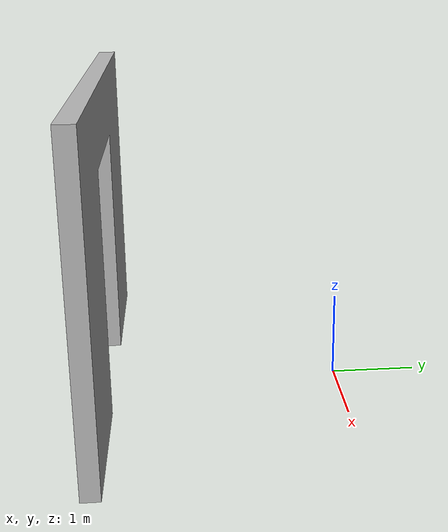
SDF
<?xml version="1.0"?>
<sdf version="1.5">
    <model name="house_wall_8">
        <static>true</static>
        <link name="link">
            <collision name="collision_wall">
                <pose>0 0 0.05 0 0 0</pose>
                <geometry>
                    <mesh>
                        <uri>model://house_scene_2_wall_8/meshes/scene_2_wall_8.dae</uri>
                    </mesh>
                </geometry>
            </collision>
            <visual name="visual_walls">
              <pose>0 0 0.05 0 0 0</pose>
              <geometry>
              <mesh>
                 <uri>model://house_scene_2_wall_8/meshes/scene_2_wall_8.dae</uri>
              </mesh>
              </geometry>
              <material>
                  <script>
                      <uri>model://house_scene_2_wall_8/materials/scripts</uri>
                      <uri>model://house_scene_2_wall_8/materials/textures</uri>
                      <name>houseMat/Diffuse</name>
                  </script>
              </material>
             </visual>

        </link>
    </model>
</sdf>
